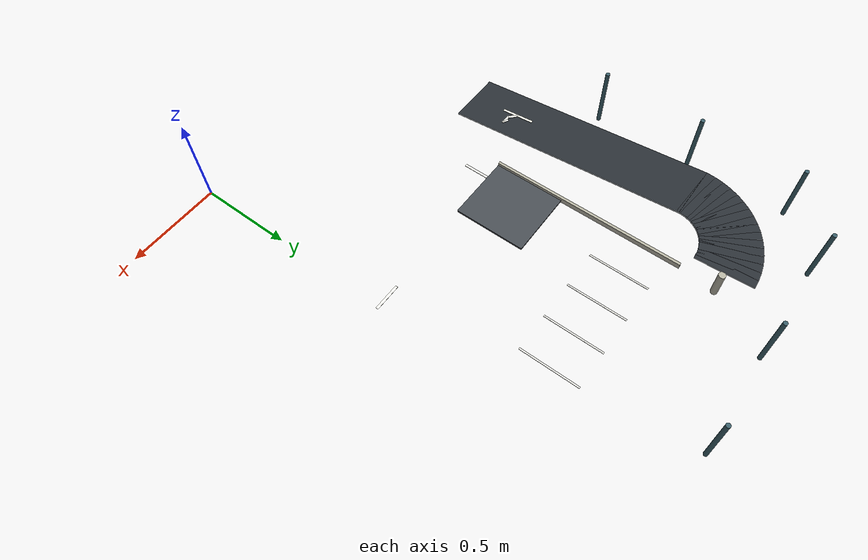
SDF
<sdf version="1.6">
 <world name="sandbox">
  <include><uri>model://sun</uri></include>
  <model name="fence_post_west_7">
   <static>true</static>
   <pose>-1.620000 1.350000 0.170000 0.000000 0.000000 0.000000</pose>
   <link name="body">
    <collision name="collision">
     <geometry><cylinder><radius>0.011000</radius><length>0.340000</length></cylinder></geometry>
    </collision>
    <visual name="visual">
     <geometry><cylinder><radius>0.011000</radius><length>0.340000</length></cylinder></geometry>
     <material><ambient>0.22 0.36 0.40 1</ambient><diffuse>0.22 0.36 0.40 1</diffuse></material>
    </visual>
   </link>
  </model>
  <model name="fence_post_west_8">
   <static>true</static>
   <pose>-1.620000 1.890000 0.170000 0.000000 0.000000 0.000000</pose>
   <link name="body">
    <collision name="collision">
     <geometry><cylinder><radius>0.011000</radius><length>0.340000</length></cylinder></geometry>
    </collision>
    <visual name="visual">
     <geometry><cylinder><radius>0.011000</radius><length>0.340000</length></cylinder></geometry>
     <material><ambient>0.22 0.36 0.40 1</ambient><diffuse>0.22 0.36 0.40 1</diffuse></material>
    </visual>
   </link>
  </model>
  <model name="fence_post_west_9">
   <static>true</static>
   <pose>-1.620000 2.430000 0.170000 0.000000 0.000000 0.000000</pose>
   <link name="body">
    <collision name="collision">
     <geometry><cylinder><radius>0.011000</radius><length>0.340000</length></cylinder></geometry>
    </collision>
    <visual name="visual">
     <geometry><cylinder><radius>0.011000</radius><length>0.340000</length></cylinder></geometry>
     <material><ambient>0.22 0.36 0.40 1</ambient><diffuse>0.22 0.36 0.40 1</diffuse></material>
    </visual>
   </link>
  </model>
  <model name="fence_post_north_0">
   <static>true</static>
   <pose>-1.350000 2.670000 0.170000 0.000000 0.000000 0.000000</pose>
   <link name="body">
    <collision name="collision">
     <geometry><cylinder><radius>0.011000</radius><length>0.340000</length></cylinder></geometry>
    </collision>
    <visual name="visual">
     <geometry><cylinder><radius>0.011000</radius><length>0.340000</length></cylinder></geometry>
     <material><ambient>0.22 0.36 0.40 1</ambient><diffuse>0.22 0.36 0.40 1</diffuse></material>
    </visual>
   </link>
  </model>
  <model name="fence_post_north_1">
   <static>true</static>
   <pose>-0.810000 2.670000 0.170000 0.000000 0.000000 0.000000</pose>
   <link name="body">
    <collision name="collision">
     <geometry><cylinder><radius>0.011000</radius><length>0.340000</length></cylinder></geometry>
    </collision>
    <visual name="visual">
     <geometry><cylinder><radius>0.011000</radius><length>0.340000</length></cylinder></geometry>
     <material><ambient>0.22 0.36 0.40 1</ambient><diffuse>0.22 0.36 0.40 1</diffuse></material>
    </visual>
   </link>
  </model>
  <model name="fence_post_north_2">
   <static>true</static>
   <pose>-0.270000 2.670000 0.170000 0.000000 0.000000 0.000000</pose>
   <link name="body">
    <collision name="collision">
     <geometry><cylinder><radius>0.011000</radius><length>0.340000</length></cylinder></geometry>
    </collision>
    <visual name="visual">
     <geometry><cylinder><radius>0.011000</radius><length>0.340000</length></cylinder></geometry>
     <material><ambient>0.22 0.36 0.40 1</ambient><diffuse>0.22 0.36 0.40 1</diffuse></material>
    </visual>
   </link>
  </model>
  <model name="left_ramp">
   <static>true</static>
   <pose>-1.350000 1.362500 0.069000 0.000000 -0.115707 1.570796</pose>
   <link name="body">
    <collision name="collision">
     <geometry><box><size>1.337000 0.300000 0.008000</size></box></geometry>
    </collision>
    <visual name="visual">
     <geometry><box><size>1.337000 0.300000 0.008000</size></box></geometry>
     <material><ambient>0.16 0.18 0.20 1</ambient><diffuse>0.16 0.18 0.20 1</diffuse></material>
    </visual>
   </link>
  </model>
  <model name="corner_top_left_00">
   <static>true</static>
   <pose>-1.349218 2.040928 0.146000 0.000000 -0.000000 1.521709</pose>
   <link name="body">
    <collision name="collision">
     <geometry><box><size>0.043894 0.300000 0.008000</size></box></geometry>
    </collision>
    <visual name="visual">
     <geometry><box><size>0.043894 0.300000 0.008000</size></box></geometry>
     <material><ambient>0.16 0.18 0.20 1</ambient><diffuse>0.16 0.18 0.20 1</diffuse></material>
    </visual>
   </link>
  </model>
  <model name="corner_top_left_01">
   <static>true</static>
   <pose>-1.346095 2.072630 0.146000 0.000000 -0.000000 1.423534</pose>
   <link name="body">
    <collision name="collision">
     <geometry><box><size>0.043894 0.300000 0.008000</size></box></geometry>
    </collision>
    <visual name="visual">
     <geometry><box><size>0.043894 0.300000 0.008000</size></box></geometry>
     <material><ambient>0.16 0.18 0.20 1</ambient><diffuse>0.16 0.18 0.20 1</diffuse></material>
    </visual>
   </link>
  </model>
  <model name="corner_top_left_02">
   <static>true</static>
   <pose>-1.339880 2.103873 0.146000 0.000000 -0.000000 1.325359</pose>
   <link name="body">
    <collision name="collision">
     <geometry><box><size>0.043894 0.300000 0.008000</size></box></geometry>
    </collision>
    <visual name="visual">
     <geometry><box><size>0.043894 0.300000 0.008000</size></box></geometry>
     <material><ambient>0.16 0.18 0.20 1</ambient><diffuse>0.16 0.18 0.20 1</diffuse></material>
    </visual>
   </link>
  </model>
  <model name="corner_top_left_03">
   <static>true</static>
   <pose>-1.330633 2.134357 0.146000 0.000000 -0.000000 1.227185</pose>
   <link name="body">
    <collision name="collision">
     <geometry><box><size>0.043894 0.300000 0.008000</size></box></geometry>
    </collision>
    <visual name="visual">
     <geometry><box><size>0.043894 0.300000 0.008000</size></box></geometry>
     <material><ambient>0.16 0.18 0.20 1</ambient><diffuse>0.16 0.18 0.20 1</diffuse></material>
    </visual>
   </link>
  </model>
  <model name="corner_top_left_04">
   <static>true</static>
   <pose>-1.318443 2.163788 0.146000 0.000000 -0.000000 1.129010</pose>
   <link name="body">
    <collision name="collision">
     <geometry><box><size>0.043894 0.300000 0.008000</size></box></geometry>
    </collision>
    <visual name="visual">
     <geometry><box><size>0.043894 0.300000 0.008000</size></box></geometry>
     <material><ambient>0.16 0.18 0.20 1</ambient><diffuse>0.16 0.18 0.20 1</diffuse></material>
    </visual>
   </link>
  </model>
  <model name="corner_top_left_05">
   <static>true</static>
   <pose>-1.303426 2.191882 0.146000 0.000000 -0.000000 1.030835</pose>
   <link name="body">
    <collision name="collision">
     <geometry><box><size>0.043894 0.300000 0.008000</size></box></geometry>
    </collision>
    <visual name="visual">
     <geometry><box><size>0.043894 0.300000 0.008000</size></box></geometry>
     <material><ambient>0.16 0.18 0.20 1</ambient><diffuse>0.16 0.18 0.20 1</diffuse></material>
    </visual>
   </link>
  </model>
  <model name="corner_top_left_06">
   <static>true</static>
   <pose>-1.285728 2.218369 0.146000 0.000000 -0.000000 0.932660</pose>
   <link name="body">
    <collision name="collision">
     <geometry><box><size>0.043894 0.300000 0.008000</size></box></geometry>
    </collision>
    <visual name="visual">
     <geometry><box><size>0.043894 0.300000 0.008000</size></box></geometry>
     <material><ambient>0.16 0.18 0.20 1</ambient><diffuse>0.16 0.18 0.20 1</diffuse></material>
    </visual>
   </link>
  </model>
  <model name="corner_top_left_07">
   <static>true</static>
   <pose>-1.265519 2.242994 0.146000 0.000000 -0.000000 0.834486</pose>
   <link name="body">
    <collision name="collision">
     <geometry><box><size>0.043894 0.300000 0.008000</size></box></geometry>
    </collision>
    <visual name="visual">
     <geometry><box><size>0.043894 0.300000 0.008000</size></box></geometry>
     <material><ambient>0.16 0.18 0.20 1</ambient><diffuse>0.16 0.18 0.20 1</diffuse></material>
    </visual>
   </link>
  </model>
  <model name="corner_top_left_08">
   <static>true</static>
   <pose>-1.242994 2.265519 0.146000 0.000000 -0.000000 0.736311</pose>
   <link name="body">
    <collision name="collision">
     <geometry><box><size>0.043894 0.300000 0.008000</size></box></geometry>
    </collision>
    <visual name="visual">
     <geometry><box><size>0.043894 0.300000 0.008000</size></box></geometry>
     <material><ambient>0.16 0.18 0.20 1</ambient><diffuse>0.16 0.18 0.20 1</diffuse></material>
    </visual>
   </link>
  </model>
  <model name="corner_top_left_09">
   <static>true</static>
   <pose>-1.218369 2.285728 0.146000 0.000000 -0.000000 0.638136</pose>
   <link name="body">
    <collision name="collision">
     <geometry><box><size>0.043894 0.300000 0.008000</size></box></geometry>
    </collision>
    <visual name="visual">
     <geometry><box><size>0.043894 0.300000 0.008000</size></box></geometry>
     <material><ambient>0.16 0.18 0.20 1</ambient><diffuse>0.16 0.18 0.20 1</diffuse></material>
    </visual>
   </link>
  </model>
  <model name="corner_top_left_10">
   <static>true</static>
   <pose>-1.191882 2.303426 0.146000 0.000000 -0.000000 0.539961</pose>
   <link name="body">
    <collision name="collision">
     <geometry><box><size>0.043894 0.300000 0.008000</size></box></geometry>
    </collision>
    <visual name="visual">
     <geometry><box><size>0.043894 0.300000 0.008000</size></box></geometry>
     <material><ambient>0.16 0.18 0.20 1</ambient><diffuse>0.16 0.18 0.20 1</diffuse></material>
    </visual>
   </link>
  </model>
  <model name="corner_top_left_11">
   <static>true</static>
   <pose>-1.163788 2.318443 0.146000 0.000000 -0.000000 0.441786</pose>
   <link name="body">
    <collision name="collision">
     <geometry><box><size>0.043894 0.300000 0.008000</size></box></geometry>
    </collision>
    <visual name="visual">
     <geometry><box><size>0.043894 0.300000 0.008000</size></box></geometry>
     <material><ambient>0.16 0.18 0.20 1</ambient><diffuse>0.16 0.18 0.20 1</diffuse></material>
    </visual>
   </link>
  </model>
  <model name="corner_top_left_12">
   <static>true</static>
   <pose>-1.134357 2.330633 0.146000 0.000000 -0.000000 0.343612</pose>
   <link name="body">
    <collision name="collision">
     <geometry><box><size>0.043894 0.300000 0.008000</size></box></geometry>
    </collision>
    <visual name="visual">
     <geometry><box><size>0.043894 0.300000 0.008000</size></box></geometry>
     <material><ambient>0.16 0.18 0.20 1</ambient><diffuse>0.16 0.18 0.20 1</diffuse></material>
    </visual>
   </link>
  </model>
  <model name="corner_top_left_13">
   <static>true</static>
   <pose>-1.103873 2.339880 0.146000 0.000000 -0.000000 0.245437</pose>
   <link name="body">
    <collision name="collision">
     <geometry><box><size>0.043894 0.300000 0.008000</size></box></geometry>
    </collision>
    <visual name="visual">
     <geometry><box><size>0.043894 0.300000 0.008000</size></box></geometry>
     <material><ambient>0.16 0.18 0.20 1</ambient><diffuse>0.16 0.18 0.20 1</diffuse></material>
    </visual>
   </link>
  </model>
  <model name="corner_top_left_14">
   <static>true</static>
   <pose>-1.072630 2.346095 0.146000 0.000000 -0.000000 0.147262</pose>
   <link name="body">
    <collision name="collision">
     <geometry><box><size>0.043894 0.300000 0.008000</size></box></geometry>
    </collision>
    <visual name="visual">
     <geometry><box><size>0.043894 0.300000 0.008000</size></box></geometry>
     <material><ambient>0.16 0.18 0.20 1</ambient><diffuse>0.16 0.18 0.20 1</diffuse></material>
    </visual>
   </link>
  </model>
  <model name="corner_top_left_15">
   <static>true</static>
   <pose>-1.040928 2.349218 0.146000 0.000000 -0.000000 0.049087</pose>
   <link name="body">
    <collision name="collision">
     <geometry><box><size>0.043894 0.300000 0.008000</size></box></geometry>
    </collision>
    <visual name="visual">
     <geometry><box><size>0.043894 0.300000 0.008000</size></box></geometry>
     <material><ambient>0.16 0.18 0.20 1</ambient><diffuse>0.16 0.18 0.20 1</diffuse></material>
    </visual>
   </link>
  </model>
  <model name="viaduct_post_left">
   <static>true</static>
   <pose>-1.000000 2.350000 0.075000 0.000000 0.000000 0.000000</pose>
   <link name="body">
    <collision name="collision">
     <geometry><cylinder><radius>0.018000</radius><length>0.150000</length></cylinder></geometry>
    </collision>
    <visual name="visual">
     <geometry><cylinder><radius>0.018000</radius><length>0.150000</length></cylinder></geometry>
     <material><ambient>0.69 0.68 0.62 1</ambient><diffuse>0.69 0.68 0.62 1</diffuse></material>
    </visual>
   </link>
  </model>
  <model name="parking_wing_left">
   <static>true</static>
   <pose>-0.840000 1.290000 0.005000 0.000000 0.000000 0.000000</pose>
   <link name="body">
    <visual name="visual">
     <geometry><box><size>0.370000 0.390000 0.010000</size></box></geometry>
     <material><ambient>0.27 0.29 0.31 1</ambient><diffuse>0.27 0.29 0.31 1</diffuse></material>
    </visual>
   </link>
  </model>
  <model name="parking_edge_left">
   <static>true</static>
   <pose>-1.025000 1.625000 0.011000 0.000000 -0.000000 -1.570796</pose>
   <link name="body">
    <collision name="collision">
     <geometry><box><size>1.062000 0.015000 0.030000</size></box></geometry>
    </collision>
    <visual name="visual">
     <geometry><box><size>1.062000 0.015000 0.030000</size></box></geometry>
     <material><ambient>0.69 0.68 0.62 1</ambient><diffuse>0.69 0.68 0.62 1</diffuse></material>
    </visual>
   </link>
  </model>
  <model name="bay_divider_0">
   <static>true</static>
   <pose>-0.820000 1.935000 0.013000 0.000000 -0.000000 1.570796</pose>
   <link name="body">
    <visual name="visual">
     <geometry><box><size>0.322000 0.009000 0.002000</size></box></geometry>
     <material><ambient>0.96 0.96 0.90 1</ambient><diffuse>0.96 0.96 0.90 1</diffuse></material>
    </visual>
   </link>
  </model>
  <model name="bay_divider_1">
   <static>true</static>
   <pose>-0.615000 1.935000 0.013000 0.000000 -0.000000 1.570796</pose>
   <link name="body">
    <visual name="visual">
     <geometry><box><size>0.322000 0.009000 0.002000</size></box></geometry>
     <material><ambient>0.96 0.96 0.90 1</ambient><diffuse>0.96 0.96 0.90 1</diffuse></material>
    </visual>
   </link>
  </model>
  <model name="bay_divider_2">
   <static>true</static>
   <pose>-0.410000 1.935000 0.013000 0.000000 -0.000000 1.570796</pose>
   <link name="body">
    <visual name="visual">
     <geometry><box><size>0.322000 0.009000 0.002000</size></box></geometry>
     <material><ambient>0.96 0.96 0.90 1</ambient><diffuse>0.96 0.96 0.90 1</diffuse></material>
    </visual>
   </link>
  </model>
  <model name="bay_divider_3">
   <static>true</static>
   <pose>-0.205000 1.935000 0.013000 0.000000 -0.000000 1.570796</pose>
   <link name="body">
    <visual name="visual">
     <geometry><box><size>0.322000 0.009000 0.002000</size></box></geometry>
     <material><ambient>0.96 0.96 0.90 1</ambient><diffuse>0.96 0.96 0.90 1</diffuse></material>
    </visual>
   </link>
  </model>
  <model name="parking_a_exit_stem">
   <static>true</static>
   <pose>-0.920000 1.027500 0.006000 0.000000 -0.000000 -1.570796</pose>
   <link name="body">
    <visual name="visual">
     <geometry><box><size>0.147000 0.014000 0.002000</size></box></geometry>
     <material><ambient>0.96 0.96 0.90 1</ambient><diffuse>0.96 0.96 0.90 1</diffuse></material>
    </visual>
   </link>
  </model>
  <model name="fork_upper_lane_stem">
   <static>true</static>
   <pose>-0.057500 1.125000 0.006000 0.000000 -0.000000 0.000000</pose>
   <link name="body">
    <visual name="visual">
     <geometry><box><size>0.147000 0.014000 0.002000</size></box></geometry>
     <material><ambient>0.96 0.96 0.90 1</ambient><diffuse>0.96 0.96 0.90 1</diffuse></material>
    </visual>
   </link>
  </model>
  <model name="outer_west_fork_stem">
   <static>true</static>
   <pose>-1.350000 1.036800 0.037145 0.000000 0.115707 -1.570796</pose>
   <link name="body">
    <visual name="visual">
     <geometry><box><size>0.098400 0.014000 0.002000</size></box></geometry>
     <material><ambient>0.96 0.96 0.90 1</ambient><diffuse>0.96 0.96 0.90 1</diffuse></material>
    </visual>
   </link>
  </model>
  <model name="outer_west_fork_straight">
   <static>true</static>
   <pose>-1.350000 0.950400 0.027103 0.000000 0.115707 -1.570796</pose>
   <link name="body">
    <visual name="visual">
     <geometry><box><size>0.098400 0.014000 0.002000</size></box></geometry>
     <material><ambient>0.96 0.96 0.90 1</ambient><diffuse>0.96 0.96 0.90 1</diffuse></material>
    </visual>
   </link>
  </model>
  <model name="outer_west_fork_left_branch">
   <static>true</static>
   <pose>-1.332400 0.973760 0.029818 0.000000 0.086728 -0.845156</pose>
   <link name="body">
    <visual name="visual">
     <geometry><box><size>0.065043 0.014000 0.002000</size></box></geometry>
     <material><ambient>0.96 0.96 0.90 1</ambient><diffuse>0.96 0.96 0.90 1</diffuse></material>
    </visual>
   </link>
  </model>
  <model name="outer_west_fork_left_turn">
   <static>true</static>
   <pose>-1.293040 0.952960 0.027401 0.000000 0.005123 -0.044089</pose>
   <link name="body">
    <visual name="visual">
     <geometry><box><size>0.055562 0.014000 0.002000</size></box></geometry>
     <material><ambient>0.96 0.96 0.90 1</ambient><diffuse>0.96 0.96 0.90 1</diffuse></material>
    </visual>
   </link>
  </model>
  <model name="outer_west_fork_left_head_1">
   <static>true</static>
   <pose>-1.280880 0.957760 0.027959 0.000000 0.059727 -0.540420</pose>
   <link name="body">
    <visual name="visual">
     <geometry><box><size>0.034391 0.011000 0.002000</size></box></geometry>
     <material><ambient>0.96 0.96 0.90 1</ambient><diffuse>0.96 0.96 0.90 1</diffuse></material>
    </visual>
   </link>
  </model>
 </world>
</sdf>
